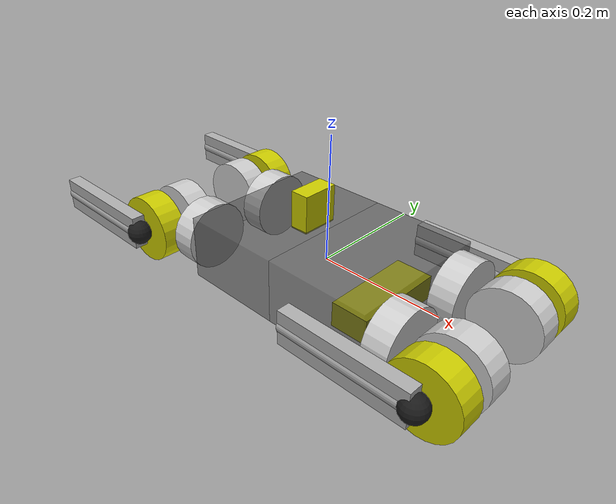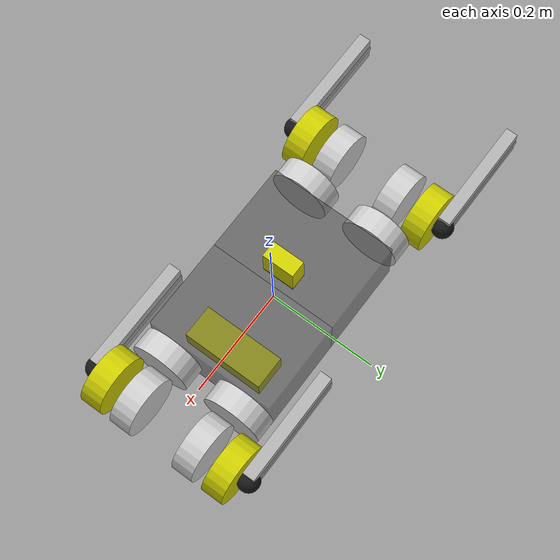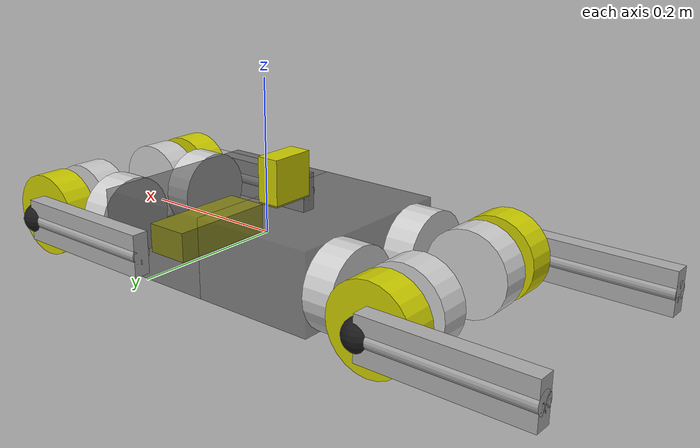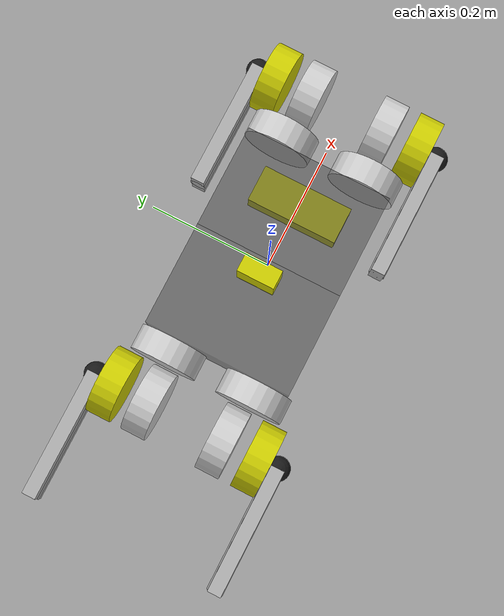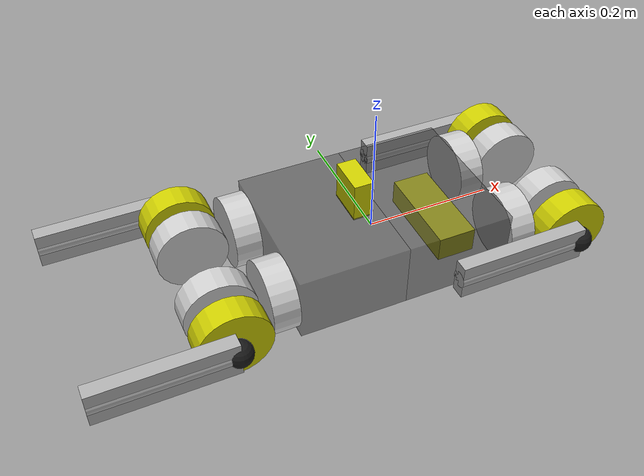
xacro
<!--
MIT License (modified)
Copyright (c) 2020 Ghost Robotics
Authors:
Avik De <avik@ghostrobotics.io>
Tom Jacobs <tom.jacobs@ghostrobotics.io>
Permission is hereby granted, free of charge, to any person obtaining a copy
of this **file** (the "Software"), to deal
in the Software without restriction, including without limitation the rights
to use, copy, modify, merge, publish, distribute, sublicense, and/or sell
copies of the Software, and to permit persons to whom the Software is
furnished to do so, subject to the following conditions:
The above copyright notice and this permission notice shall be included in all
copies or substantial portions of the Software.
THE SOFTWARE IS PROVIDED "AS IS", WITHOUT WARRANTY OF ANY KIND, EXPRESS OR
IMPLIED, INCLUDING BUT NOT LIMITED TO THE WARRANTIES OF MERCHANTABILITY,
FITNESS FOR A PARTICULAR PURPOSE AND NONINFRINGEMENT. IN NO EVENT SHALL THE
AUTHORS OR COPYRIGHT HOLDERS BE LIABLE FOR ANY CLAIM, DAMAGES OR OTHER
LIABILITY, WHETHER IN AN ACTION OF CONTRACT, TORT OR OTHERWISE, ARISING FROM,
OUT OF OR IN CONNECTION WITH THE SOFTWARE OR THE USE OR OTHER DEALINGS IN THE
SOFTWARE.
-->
<?xml version="1.0" ?>

<robot  xmlns:xacro="http://www.ros.org/wiki/xacro" name="spirit">

  <mujoco> <compiler discardvisual="false"/> </mujoco>
  <material name="yellow">
    <color rgba="0.8 0.8 0 1"/>
  </material>
  <material name="black">
    <color rgba="0.1 0.1 0.1 1"/>
  </material>
  <material name="darkgray">
    <color rgba="0.25 0.25 0.25 0.5"/>
  </material>
  <material name="copper">
    <color rgba="0.8 0.8 0.8 1"/>
  </material>
  <material name="silver">
    <color rgba="0.68 0.68 0.68 1"/>
  </material>

  <!-- First body segment-->

  <xacro:macro name="make_body" params="length width heigth ">
    <!-- First body segment-->
  <link name="body">
	</link>

  <link name="rear_body">
    <visual>
      <origin rpy="0 0 0" xyz="0 0 0"/>
      <geometry>
        <box size="${length} ${width} ${heigth}"/>
      </geometry>
      <material name="darkgray"/>
    </visual>
    <inertial>
      <mass value="2.575"/>
      <!-- Uniform box -->
      <inertia ixx="0.017" ixy="0" ixz="0" iyy="0.01" iyz="0" izz="0.021"/>
    </inertial>
    <!-- Just copy geometry for collision -->
    <collision>
      <origin rpy="0 0 0" xyz="0 0 0"/>
      <geometry>
        <box size="${length} ${width} ${heigth}"/>
      </geometry>
    </collision>
  </link>

  <!-- Fixed rear body displacement -->
  <joint name="fixed_rear" type="fixed">
    <parent link="body"/>
    <child link="rear_body"/>
    <origin xyz="-0.08375 0 0"/>
  </joint>

  <!-- Second body segment-->
  <link name="front_body">
    <visual>
      <origin rpy="0 0 0" xyz="0 0 0"/>
      <geometry>
        <box size="${length} ${width} ${heigth}"/>
      </geometry>
      <material name="darkgray"/>
    </visual>
    <inertial>
      <mass value="2.575"/>
      <!-- Uniform box -->
      <inertia ixx="0.018" ixy="0" ixz="0" iyy="0.012" iyz="0" izz="0.023"/>
    </inertial>
    <!-- Just copy geometry for collision -->
    <collision>
      <origin rpy="0 0 0" xyz="0.0 0 0"/>
      <geometry>
        <box size="${length} ${width} ${heigth}"/>
      </geometry>
    </collision>
  </link>

  </xacro:macro>

 <xacro:make_body length="0.1675" width="0.24" heigth="0.104"/>

  <xacro:macro name="spine_hump" >
    <link name="spine-hump">
    <visual>
      <origin rpy="0 0 0" xyz="-0.02 0. 0.08"/>
      <geometry>
        <box size="0.03 0.06 0.06"/>
      </geometry>
      <material name="yellow"/>
    </visual>
    <collision>
      <origin rpy="0 0 0" xyz="-0.02 0. 0.08"/>
      <geometry>
        <box size="0.03 0.06 0.06"/>
      </geometry>
    </collision>
    <inertial>
      <mass value="0.575"/>
      <inertia ixx="0.00076963541" ixy="0" ixz="0" iyy="0.00074963541" iyz="0" izz="0.0009496875"/>
    </inertial>
   </link>

    <joint name="spine_mot" type="fixed">
        <parent link="rear_body"/>
        <child link="spine-hump"/>

        <origin xyz="0.07375 0 0"/>
    </joint>
  </xacro:macro>

  <xacro:spine_hump/>

  <xacro:macro name="battery" >
    <link name="battery">
        <visual>
        <origin rpy="0 0 0" xyz="0 0. -0.02"/>
        <geometry>
            <box size="0.06 0.15 0.04"/>
        </geometry>
        <material name="yellow"/>
        </visual>
        <collision>
        <origin rpy="0 0 0" xyz="0 0. -0.02"/>
        <geometry>
            <box size="0.06 0.15 0.04"/>
        </geometry>
        </collision>
        <inertial>
        <mass value="0.631"/>
        <inertia ixx="0.00132" ixy="0" ixz="0" iyy="0.0003" iyz="0" izz="0.00137"/>
        </inertial>
    </link>

    <joint name="battery" type="fixed">
        <parent link="front_body"/>
        <child link="battery"/>
        <axis xyz="1 0 0"/>
        <origin xyz="0.025 0 0"/>
        <limit effort="40" lower="-0.707" upper="0.707" velocity="8"/>
        <dynamics damping="0.0" friction="0.0"/>
    </joint>
  </xacro:macro>

  <xacro:battery/>

  <xacro:macro name="body_twist" >
        <!-- body twist joint. Joint name: 12 -->
    <joint name="joint_12" type="revolute">
        <parent link="body"/>
        <child link="front_body"/>
        <axis xyz="1 0 0"/>
        <origin xyz="0.08375 0 0"/>
        <limit effort="40" lower="-0.707" upper="0.707" velocity="8"/>
        <dynamics damping="0.0" friction="0.0"/>
    </joint>
    <!-- Transmission elements required for Gazebo -->
    <transmission name="transmission_12">
        <type>transmission_interface/SimpleTransmission</type>
        <joint name="joint_12">
        </joint>
        <actuator name="motor_12">
        <mechanicalReduction>1</mechanicalReduction>
        </actuator>
    </transmission>
  </xacro:macro>

  <xacro:body_twist/>

  <xacro:macro name="motor_left" params="roll pitch yaw name color ">
     <link name="${name}">
        <visual>
        <origin rpy="${roll} ${pitch} ${yaw}" xyz="0 0.028 0"/>
        <geometry>
            <cylinder length="0.04" radius="0.055"/>
        </geometry>
        <material name="${color}"/>
        </visual>
        <collision>
        <origin rpy="${roll} ${pitch} ${yaw}" xyz="0 0.028 0"/>
        <geometry>
            <cylinder length="0.04" radius="0.055"/>
        </geometry>
        </collision>
        <inertial>
        <mass value="0.575"/>
        <inertia ixx="0.00066963541" ixy="0" ixz="0" iyy="0.00066963541" iyz="0" izz="0.0008696875"/>
        </inertial>
     </link>
  </xacro:macro>

  <xacro:macro name="motor_right" params="roll pitch yaw name color ">
     <link name="${name}">
        <visual>
        <origin rpy="${roll} ${pitch} ${yaw}" xyz="0 -0.028 0"/>
        <geometry>
            <cylinder length="0.04" radius="0.055"/>
        </geometry>
        <material name="${color}"/>
        </visual>
        <collision>
        <origin rpy="${roll} ${pitch} ${yaw}" xyz="0 -0.028 0"/>
        <geometry>
            <cylinder length="0.04" radius="0.055"/>
        </geometry>
        </collision>
        <inertial>
        <mass value="0.575"/>
        <inertia ixx="0.00066963541" ixy="0" ixz="0" iyy="0.00066963541" iyz="0" izz="0.0008696875"/>
        </inertial>
     </link>
  </xacro:macro>

  <xacro:macro name="upper_leg" params="name">
    <!-- Upper leg -->
    <link name="${name}">
        <visual>
        <origin rpy="0 0 0" xyz="-0.103 0 0"/>
        <geometry>
            <box size="0.206 0.022 0.055"/>
        </geometry>
        <material name="silver"/>
        </visual>
        <collision>
        <origin rpy="0 0 0" xyz="-0.103 0 0"/>
        <geometry>
            <box size="0.206 0.022 0.055"/>
        </geometry>
        </collision>
        <inertial>
        <mass value="0.775"/>
        <inertia ixx="5e-05" ixy="0" ixz="0" iyy="0.001" iyz="0" izz="0.001"/>
        </inertial>
    </link>
  </xacro:macro>

  <xacro:macro name="lower_leg" params="name">
  <!-- Lower leg -->
    <link name="${name}">
        <visual>
        <origin rpy="0 1.570796326795 0" xyz="0.103 0 0"/>
        <geometry>
            <cylinder length="0.206" radius="0.013"/>
        </geometry>
        <material name="silver"/>
        </visual>
        <collision>
        <origin rpy="0 1.570796326795 0" xyz="0.103 0 0"/>
        <geometry>
            <cylinder length="0.206" radius="0.013"/>
        </geometry>
        </collision>
        <inertial>
        <mass value="0.075"/>
        <inertia ixx="0.00032" ixy="0" ixz="0" iyy="0.00032" iyz="0" izz="0.0000085"/>
        </inertial>
    </link>
  </xacro:macro>

    <!-- Hip motor -->
    <xacro:motor_left roll= "1.570796326795" pitch="0" yaw="0" name="hip0" color="yellow"/>
    <!-- Abd motor -->
    <xacro:motor_left pitch= "1.570796326795" roll="0" yaw="0" name="abd0" color="copper"/>

    <!-- Con motor -->
    <xacro:motor_left roll= "1.570796326795" pitch="0" yaw="0" name="con0" color="copper"/>

    <xacro:property name="Abd_xf" value="0.1055"/>
    <xacro:property name="Abd_xb" value="-0.1055"/>

    <xacro:property name="Abd_yl" value="0.045"/>
    <xacro:property name="Abd_yr" value="-0.045"/>

    <xacro:property name="Abd2Hip_xf" value="0.08" />
    <xacro:property name="Abd2Hip_xb" value="-0.08" />
    <xacro:property name="Abd2Hip_yl" value="0.05" />
    <xacro:property name="Abd2Hip_yr" value="-0.05" />

    <xacro:property name="Hip2con_l" value="-0.06" />
    <xacro:property name="Hip2con_r" value="0.06" />

    <xacro:property name="Hip2K_l" value="0.06" />
    <xacro:property name="Hip2K_r" value="-0.06" />

    <xacro:property name="Knee2Foot_l" value="0.0" />
    <xacro:property name="Knee2Foot_r" value="0" />
    <!-- Hip-Abduction motor joint + offset( 5 cm) -->
    <joint name="joint_8" type="revolute">
        <parent link="abd0"/>
        <child link="hip0"/>
        <axis xyz="1 0 0"/>
        <origin xyz="${Abd2Hip_xf} ${Abd2Hip_yl} 0.0"/>
        <limit effort="40" lower="-0.707" upper="0.707" velocity="8"/>
        <dynamics damping="0.0" friction="0.0"/>
    </joint>

    <!-- Abduction joint. Joint names are: 8 9 10 11 -->
    <!-- Adding x offset to the joint -->
    <!-- y-origin point changed to 4.5 cm instead of 7 cm -->
    <joint name="joint_14" type="fixed">
        <parent link="front_body"/>
        <child link="abd0"/>
        <axis xyz="1 0 0"/>
        <origin xyz="${Abd_xf} ${Abd_yl} 0"/>
        <limit effort="40" lower="-0.707" upper="0.707" velocity="8"/>
        <dynamics damping="0.0" friction="0.0"/>
    </joint>

    <!-- Hip to Con -->
    <joint name="joint_20" type="fixed">
        <parent link="hip0"/>
        <child link="con0"/>
        <axis xyz="1 0 0"/>
        <origin xyz="0 ${Hip2con_l} 0"/>

        <dynamics damping="0.0" friction="0.0"/>
    </joint>

    <!-- Transmission elements required for Gazebo -->
    <transmission name="transmission_8">
        <type>transmission_interface/SimpleTransmission</type>
        <joint name="joint_8">
        </joint>
        <actuator name="motor_8">
        <mechanicalReduction>1</mechanicalReduction>
        </actuator>
    </transmission>

    <!-- Upper leg -->
    <xacro:upper_leg name="upper0"/>

    <!-- Hip joint. (Motor to upper leg). Joint names are: 0 2 4 6 . Added Off-set in y-->
    <joint name="joint_0" type="revolute">
        <parent link="hip0"/>
        <child link="upper0"/>
        <axis xyz="0 -1 0"/>
        <origin xyz="0 ${Hip2K_l} 0"/>
        <!--  rpy="0 -0.3 0" -->
        <limit effort="40" lower="-6.28318530718" upper="6.28318530718" velocity="8"/>
        <dynamics damping="0.0" friction="0.0"/>
    </joint>
    <!-- Transmission elements required for Gazebo -->
    <transmission name="transmission_0">
        <type>transmission_interface/SimpleTransmission</type>
        <joint name="joint_0">
        </joint>
        <actuator name="motor_0">
        <mechanicalReduction>1</mechanicalReduction>
        </actuator>
    </transmission>

    <!-- Lower leg -->
    <xacro:lower_leg name="lower0"/>
    <!-- Knee joint. Joint names are: 1 3 5 7 . Off-set added in y-->
    <joint name="joint_1" type="revolute">
        <parent link="upper0"/>
        <child link="lower0"/>
        <axis xyz="0 1 0"/>
        <origin xyz="-0.206 ${Knee2Foot_l} 0"/>
        <!--rpy="0 0.5 0"-->
        <limit effort="40" lower="0" upper="3.14159265359" velocity="8"/>
        <dynamics damping="0.0" friction="0.0"/>
    </joint>
    <!-- Transmission elements required for Gazebo -->
    <transmission name="transmission_1">
        <type>transmission_interface/SimpleTransmission</type>
        <joint name="joint_1">
        </joint>
        <actuator name="motor_1">
        <mechanicalReduction>1.5</mechanicalReduction>
        <!-- Spirit knees have a 1.5 reduction from the original modules-->
        </actuator>
    </transmission>
    <!-- Toe -->
    <link name="toe0">
        <contact>
        <friction_anchor/>
        <stiffness value="30000.0"/>
        <damping value="1000.0"/>
        <spinning_friction value="0.3"/>
        <lateral_friction value="50.0"/>
        </contact>
        <visual>
        <origin rpy="0 0 0" xyz="0 0 0"/>
        <geometry>
            <sphere radius="0.02"/>
        </geometry>
        <material name="black"/>
        </visual>
        <collision>
        <origin rpy="0 0 0" xyz="0 0 0"/>
        <geometry>
            <sphere radius="0.02"/>
        </geometry>
        </collision>
        <inertial>
        <mass value="0.015"/>
        <inertia ixx="0.000025" ixy="0" ixz="0" iyy="0.000025" iyz="0" izz="0.000025"/>
        </inertial>
    </link>
    <joint name="jtoe0" type="fixed">
        <parent link="lower0"/>
        <child link="toe0"/>
        <origin xyz="0.206 0 -0.0"/>
        <dynamics damping="0.0" friction="0.0"/>
    </joint>

   <!-- Hip motor -->
    <xacro:motor_left roll= "1.570796326795" pitch="0" yaw="0" name="hip1" color="yellow"/>
    <!-- Abd motor -->
    <xacro:motor_left pitch= "1.570796326795" roll="0" yaw="0" name="abd1" color="copper"/>

    <!-- Con motor -->
    <xacro:motor_left roll= "1.570796326795" pitch="0" yaw="0" name="con1" color="copper"/>
  <!-- Hip-Abduction motor joint + offset -->
  <joint name="joint_9" type="revolute">
    <parent link="abd1"/>
    <child link="hip1"/>
    <axis xyz="1 0 0"/>
    <origin xyz="${Abd2Hip_xb} ${Abd2Hip_yl} 0.0"/>
    <limit effort="40" lower="-0.707" upper="0.707" velocity="8"/>
    <dynamics damping="0.0" friction="0.0"/>
  </joint>

  <!-- Abduction joint. Joint names are: 8 9 10 11 -->
  <!-- y-origin point changed to 4.5 cm instead of 7 cm -->
  <joint name="abd2fb" type="fixed">
    <parent link="rear_body"/>
    <child link="abd1"/>
    <axis xyz="1 0 0"/>
    <origin xyz="${Abd_xb} ${Abd_yl} 0"/>
    <limit effort="40" lower="-0.707" upper="0.707" velocity="8"/>
    <dynamics damping="0.0" friction="0.0"/>
  </joint>
  <!-- Transmission elements required for Gazebo -->
  <transmission name="transmission_9">
    <type>transmission_interface/SimpleTransmission</type>
    <joint name="joint_9">
    </joint>
    <actuator name="motor_9">
      <mechanicalReduction>1</mechanicalReduction>
    </actuator>
  </transmission>

  <!-- Hip to Con -->
  <joint name="joint_20" type="fixed">
    <parent link="hip1"/>
    <child link="con1"/>
    <axis xyz="1 0 0"/>
    <origin xyz="0 ${Hip2con_l} 0"/>

    <dynamics damping="0.0" friction="0.0"/>
  </joint>

  <!-- Upper leg -->
  <xacro:upper_leg name="upper1"/>

  <!-- Hip joint. (Motor to upper leg). Joint names are: 0 2 4 6 . Added Off-set in y-->
  <joint name="joint_2" type="revolute">
    <parent link="hip1"/>
    <child link="upper1"/>
    <axis xyz="0 -1 0"/>
    <origin xyz="0 ${Hip2K_l} 0"/>
    <!--  rpy="0 -0.3 0" -->
    <limit effort="40" lower="-6.28318530718" upper="6.28318530718" velocity="8"/>
    <dynamics damping="0.0" friction="0.0"/>
  </joint>
  <!-- Transmission elements required for Gazebo -->
  <transmission name="transmission_2">
    <type>transmission_interface/SimpleTransmission</type>
    <joint name="joint_2">
    </joint>
    <actuator name="motor_2">
      <mechanicalReduction>1</mechanicalReduction>
    </actuator>
  </transmission>
  <!-- Lower leg -->
  <xacro:lower_leg name="lower1"/>
  <!-- Knee joint. Joint names are: 1 3 5 7 . Off-set added in y-->
  <joint name="joint_3" type="revolute">
    <parent link="upper1"/>
    <child link="lower1"/>
    <axis xyz="0 1 0"/>
    <origin xyz="-0.206 ${Knee2Foot_l} 0"/>
    <!--rpy="0 0.5 0"-->
    <limit effort="40" lower="0" upper="3.14159265359" velocity="8"/>
    <dynamics damping="0.0" friction="0.0"/>
  </joint>
  <!-- Transmission elements required for Gazebo -->
  <transmission name="transmission_3">
    <type>transmission_interface/SimpleTransmission</type>
    <joint name="joint_3">
    </joint>
    <actuator name="motor_3">
      <mechanicalReduction>1.5</mechanicalReduction>
      <!-- Spirit knees have a 1.5 reduction from the original modules-->
    </actuator>
  </transmission>
  <!-- Toe -->
  <link name="toe1">
    <contact>
      <friction_anchor/>
      <stiffness value="30000.0"/>
      <damping value="1000.0"/>
      <spinning_friction value="0.3"/>
      <lateral_friction value="50.0"/>
    </contact>
    <visual>
      <origin rpy="0 0 0" xyz="0 0 0"/>
      <geometry>
        <sphere radius="0.02"/>
      </geometry>
      <material name="black"/>
    </visual>
    <collision>
      <origin rpy="0 0 0" xyz="0 0 0"/>
      <geometry>
        <sphere radius="0.02"/>
      </geometry>
    </collision>
    <inertial>
      <mass value="0.015"/>
      <inertia ixx="0.000025" ixy="0" ixz="0" iyy="0.000025" iyz="0" izz="0.000025"/>
    </inertial>
  </link>
  <joint name="jtoe1" type="fixed">
    <parent link="lower1"/>
    <child link="toe1"/>
    <origin xyz="0.206 0 -0.0"/>
    <dynamics damping="0.0" friction="0.0"/>
  </joint>

   <!-- Hip motor -->
    <xacro:motor_right roll= "1.570796326795" pitch="0" yaw="0" name="hip2" color="yellow"/>
    <!-- Abd motor -->
    <xacro:motor_right pitch= "1.570796326795" roll="0" yaw="0" name="abd2" color="copper"/>

    <!-- Con motor -->
    <xacro:motor_right roll= "1.570796326795" pitch="0" yaw="0" name="con2" color="copper"/>

  <!-- Hip-Abduction motor joint + offset -->
  <joint name="joint_10" type="revolute">
    <parent link="abd2"/>
    <child link="hip2"/>
    <axis xyz="1 0 0"/>
    <origin xyz="${Abd2Hip_xf} ${Abd2Hip_yr} 0.0"/>
    <limit effort="40" lower="-0.707" upper="0.707" velocity="8"/>
    <dynamics damping="0.0" friction="0.0"/>
  </joint>

  <!-- Abduction joint. Joint names are: 8 9 10 11 -->
  <!-- y-origin point changed to 4.5 cm instead of 7 cm -->
  <joint name="joint_17" type="fixed">
    <parent link="front_body"/>
    <child link="abd2"/>
    <axis xyz="1 0 0"/>
    <origin xyz="${Abd_xf} ${Abd_yr} 0"/>
    <limit effort="40" lower="-0.707" upper="0.707" velocity="8"/>
    <dynamics damping="0.0" friction="0.0"/>
  </joint>

  <!-- Hip to Con -->
  <joint name="joint_22" type="fixed">
    <parent link="hip2"/>
    <child link="con2"/>
    <axis xyz="1 0 0"/>
    <origin xyz="0 ${Hip2con_r} 0"/>

    <dynamics damping="0.0" friction="0.0"/>
  </joint>
  <!-- Transmission elements required for Gazebo -->
  <transmission name="transmission_10">
    <type>transmission_interface/SimpleTransmission</type>
    <joint name="joint_10">
    </joint>
    <actuator name="motor_10">
      <mechanicalReduction>1</mechanicalReduction>
    </actuator>
  </transmission>
  <!-- Upper leg -->
  <xacro:upper_leg name="upper2"/>

  <!-- Hip joint. (Motor to upper leg). Joint names are: 0 2 4 6 . Added Off-set in y-->
  <joint name="joint_4" type="revolute">
    <parent link="hip2"/>
    <child link="upper2"/>
    <axis xyz="0 -1 0"/>
    <origin xyz="0 ${Hip2K_r} 0"/>
    <!--  rpy="0 -0.3 0" -->
    <limit effort="40" lower="-6.28318530718" upper="6.28318530718" velocity="8"/>
    <dynamics damping="0.0" friction="0.0"/>
  </joint>
  <!-- Transmission elements required for Gazebo -->
  <transmission name="transmission_4">
    <type>transmission_interface/SimpleTransmission</type>
    <joint name="joint_4">
    </joint>
    <actuator name="motor_4">
      <mechanicalReduction>1</mechanicalReduction>
    </actuator>
  </transmission>
  <!-- Lower leg -->
  <xacro:lower_leg name="lower2"/>

  <!-- Knee joint. Joint names are: 1 3 5 7 . Off-set added in y-->
  <joint name="joint_5" type="revolute">
    <parent link="upper2"/>
    <child link="lower2"/>
    <axis xyz="0 1 0"/>
    <origin xyz="-0.206 ${Knee2Foot_r} 0"/>
    <!--rpy="0 0.5 0"-->
    <limit effort="40" lower="0" upper="3.14159265359" velocity="8"/>
    <dynamics damping="0.0" friction="0.0"/>
  </joint>
  <!-- Transmission elements required for Gazebo -->
  <transmission name="transmission_5">
    <type>transmission_interface/SimpleTransmission</type>
    <joint name="joint_5">
    </joint>
    <actuator name="motor_5">
      <mechanicalReduction>1.5</mechanicalReduction>
      <!-- Spirit knees have a 1.5 reduction from the original modules-->
    </actuator>
  </transmission>
  <!-- Toe -->
  <link name="toe2">
    <contact>
      <friction_anchor/>
      <stiffness value="30000.0"/>
      <damping value="1000.0"/>
      <spinning_friction value="0.3"/>
      <lateral_friction value="50.0"/>
    </contact>
    <visual>
      <origin rpy="0 0 0" xyz="0 0 0"/>
      <geometry>
        <sphere radius="0.02"/>
      </geometry>
      <material name="black"/>
    </visual>
    <collision>
      <origin rpy="0 0 0" xyz="0 0 0"/>
      <geometry>
        <sphere radius="0.02"/>
      </geometry>
    </collision>
    <inertial>
      <mass value="0.015"/>
      <inertia ixx="0.000025" ixy="0" ixz="0" iyy="0.000025" iyz="0" izz="0.000025"/>
    </inertial>
  </link>
  <joint name="jtoe2" type="fixed">
    <parent link="lower2"/>
    <child link="toe2"/>
    <origin xyz="0.206 0 -0.0"/>
    <dynamics damping="0.0" friction="0.0"/>
  </joint>

   <!-- Hip motor -->
    <xacro:motor_right roll= "1.570796326795" pitch="0" yaw="0" name="hip3" color="yellow"/>
    <!-- Abd motor -->
    <xacro:motor_right pitch= "1.570796326795" roll="0" yaw="0" name="abd3" color="copper"/>

    <!-- Con motor -->
    <xacro:motor_right roll= "1.570796326795" pitch="0" yaw="0" name="con3" color="copper"/>
  <!-- Hip-Abduction motor joint + offset -->
  <joint name="joint_11" type="revolute">
    <parent link="abd3"/>
    <child link="hip3"/>
    <axis xyz="1 0 0"/>
    <origin xyz="${Abd2Hip_xb} ${Abd2Hip_yr} 0.0"/>
    <limit effort="40" lower="-0.707" upper="0.707" velocity="8"/>
    <dynamics damping="0.0" friction="0.0"/>
  </joint>

  <!-- Abduction joint. Joint names are: 8 9 10 11 -->
  <!-- changed y-origin to 4.5cm instead of 7 cm -->
  <joint name="abd2rb" type="fixed">
    <parent link="rear_body"/>
    <child link="abd3"/>
    <axis xyz="1 0 0"/>
    <origin xyz="${Abd_xb} ${Abd_yr} 0"/>
    <limit effort="40" lower="-0.707" upper="0.707" velocity="8"/>
    <dynamics damping="0.0" friction="0.0"/>
  </joint>
  <!-- Transmission elements required for Gazebo -->
  <transmission name="transmission_11">
    <type>transmission_interface/SimpleTransmission</type>
    <joint name="joint_11">
    </joint>
    <actuator name="motor_11">
      <mechanicalReduction>1</mechanicalReduction>
    </actuator>
  </transmission>

  <!-- Hip to Con -->
  <joint name="joint_22" type="fixed">
    <parent link="hip3"/>
    <child link="con3"/>
    <axis xyz="1 0 0"/>
    <origin xyz="0 ${Hip2con_r} 0"/>

    <dynamics damping="0.0" friction="0.0"/>
  </joint>

  <!-- Upper leg -->
  <xacro:upper_leg name="upper3"/>

  <!-- Hip joint. (Motor to upper leg). Joint names are: 0 2 4 6 . Added Off-set in y-->
  <joint name="joint_6" type="revolute">
    <parent link="hip3"/>
    <child link="upper3"/>
    <axis xyz="0 -1 0"/>
    <origin xyz="0 ${Hip2K_r} 0"/>
    <!--  rpy="0 -0.3 0" -->
    <limit effort="40" lower="-6.28318530718" upper="6.28318530718" velocity="8"/>
    <dynamics damping="0.0" friction="0.0"/>
  </joint>
  <!-- Transmission elements required for Gazebo -->
  <transmission name="transmission_6">
    <type>transmission_interface/SimpleTransmission</type>
    <joint name="joint_6">
    </joint>
    <actuator name="motor_6">
      <mechanicalReduction>1</mechanicalReduction>
    </actuator>
  </transmission>
  <!-- Lower leg -->
  <xacro:lower_leg name="lower3"/>

  <!-- Knee joint. Joint names are: 1 3 5 7 . Off-set added in y-->
  <joint name="joint_7" type="revolute">
    <parent link="upper3"/>
    <child link="lower3"/>
    <axis xyz="0 1 0"/>
    <origin xyz="-0.206 ${Knee2Foot_r} 0"/>
    <!--rpy="0 0.5 0"-->
    <limit effort="40" lower="0" upper="3.14159265359" velocity="8"/>
    <dynamics damping="0.0" friction="0.0"/>
  </joint>
  <!-- Transmission elements required for Gazebo -->
  <transmission name="transmission_7">
    <type>transmission_interface/SimpleTransmission</type>
    <joint name="joint_7">
    </joint>
    <actuator name="motor_7">
      <mechanicalReduction>1.5</mechanicalReduction>
      <!-- Spirit knees have a 1.5 reduction from the original modules-->
    </actuator>
  </transmission>
  <!-- Toe -->
  <link name="toe3">
    <contact>
      <friction_anchor/>
      <stiffness value="30000.0"/>
      <damping value="1000.0"/>
      <spinning_friction value="0.3"/>
      <lateral_friction value="50.0"/>
    </contact>
    <visual>
      <origin rpy="0 0 0" xyz="0 0 0"/>
      <geometry>
        <sphere radius="0.02"/>
      </geometry>
      <material name="black"/>
    </visual>
    <collision>
      <origin rpy="0 0 0" xyz="0 0 0"/>
      <geometry>
        <sphere radius="0.02"/>
      </geometry>
    </collision>
    <inertial>
      <mass value="0.015"/>
      <inertia ixx="0.000025" ixy="0" ixz="0" iyy="0.000025" iyz="0" izz="0.000025"/>
    </inertial>
  </link>
  <joint name="jtoe3" type="fixed">
    <parent link="lower3"/>
    <child link="toe3"/>
    <origin xyz="0.206 0 -0.0"/>
    <dynamics damping="0.0" friction="0.0"/>
  </joint>
</robot>
